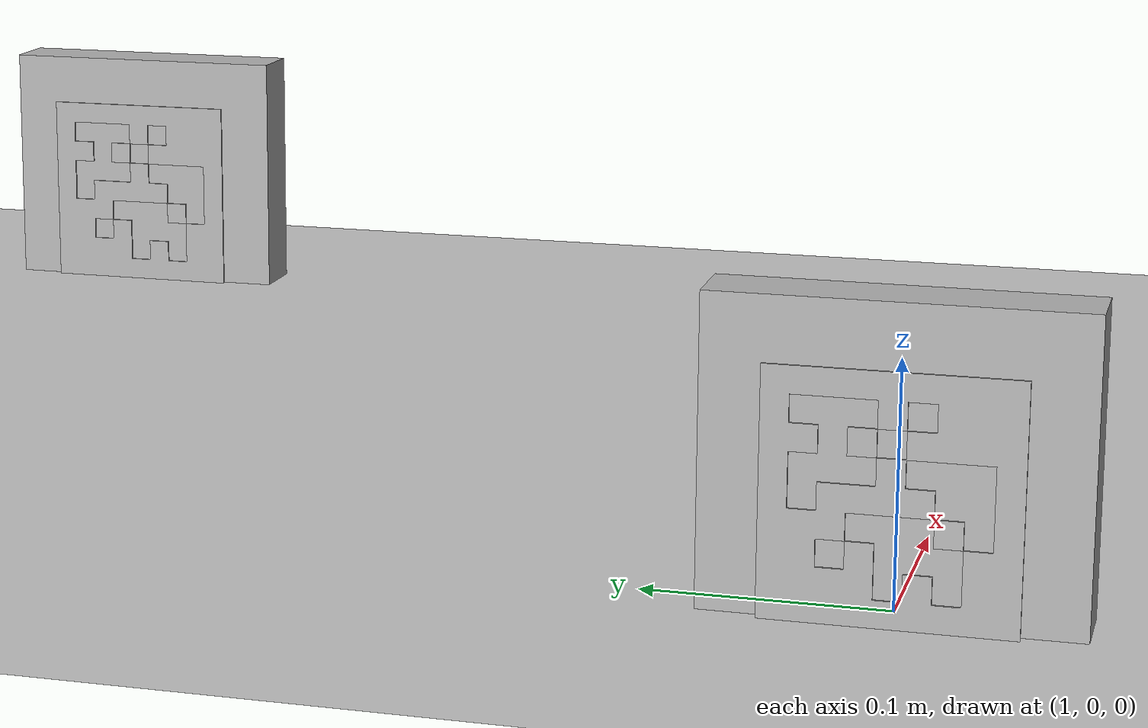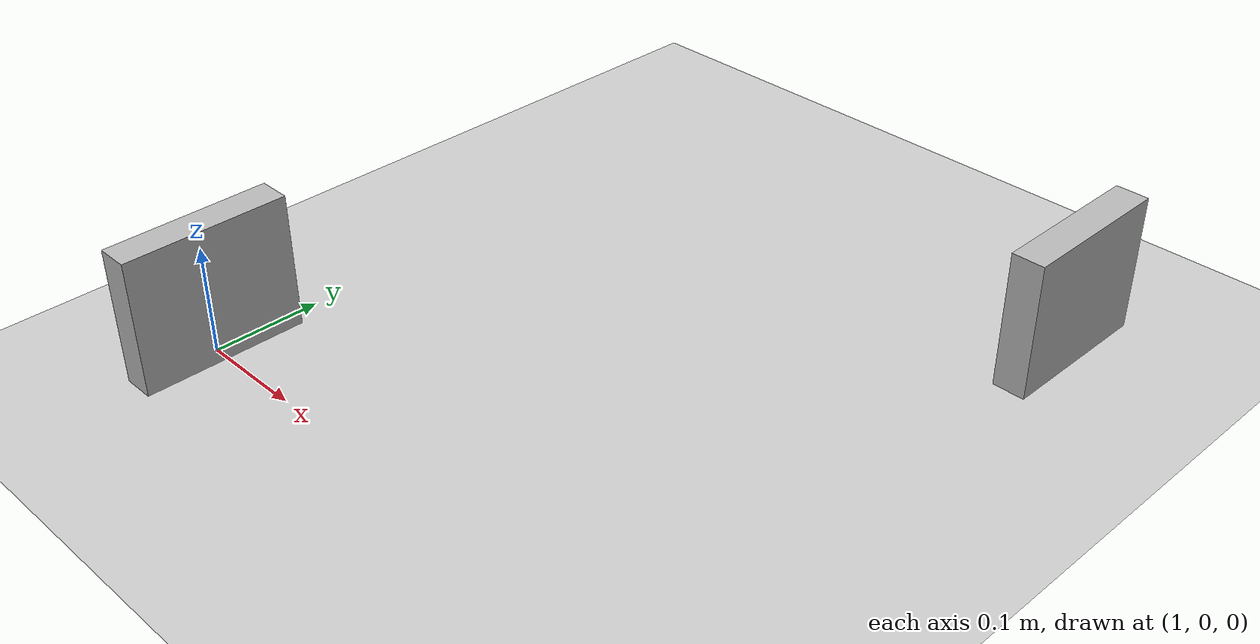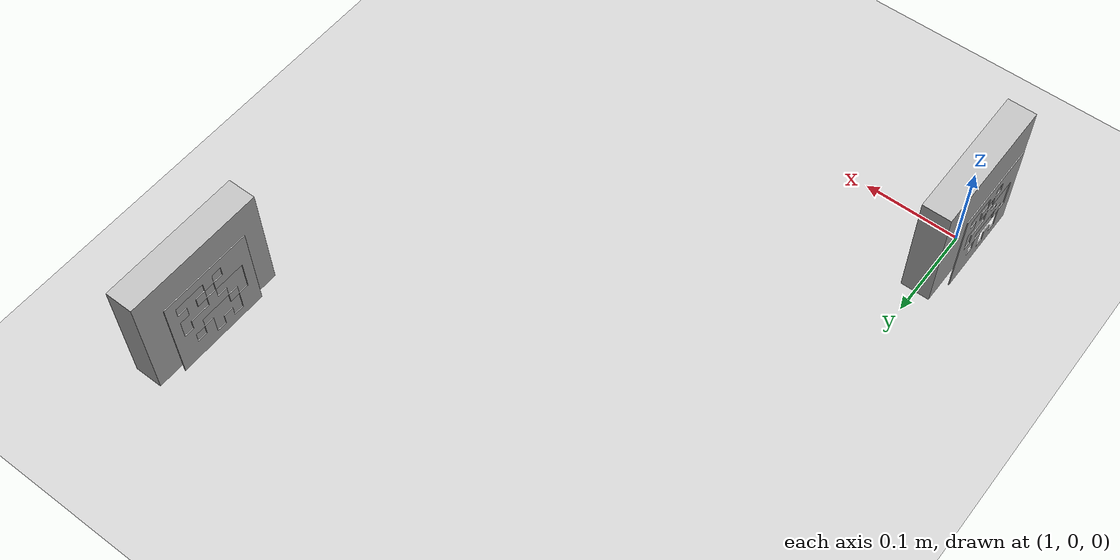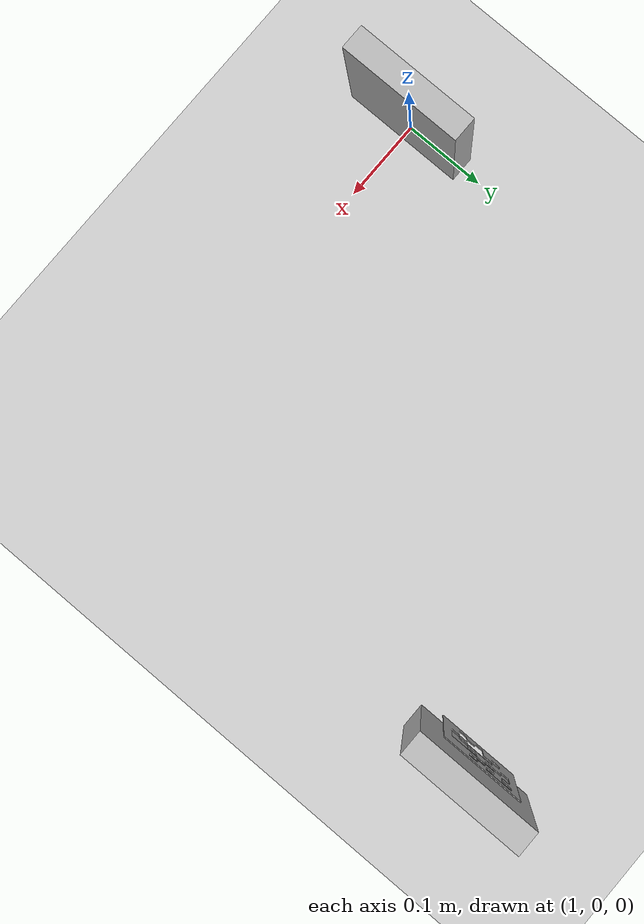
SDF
<?xml version="1.0" ?>
<sdf version="1.6">
  <world name="empty">

    <physics name="1ms" type="ignored">
      <max_step_size>0.001</max_step_size>
      <real_time_factor>1.05</real_time_factor>
    </physics>
    <plugin
      filename="gz-sim-physics-system"
      name="gz::sim::systems::Physics">
    </plugin>
    <plugin
      filename="gz-sim-user-commands-system"
      name="gz::sim::systems::UserCommands">
    </plugin>
    <plugin
      filename="gz-sim-scene-broadcaster-system"
      name="gz::sim::systems::SceneBroadcaster">
    </plugin>
    <plugin
      filename="gz-sim-contact-system"
      name="gz::sim::systems::Contact">
    </plugin>
    <plugin
        filename="gz-sim-sensors-system"
        name="gz::sim::systems::Sensors">
        <render_engine>ogre2</render_engine>
      </plugin>

    <light type="directional" name="sun">
      <cast_shadows>true</cast_shadows>
      <pose>0 0 10 0 0 0</pose>
      <diffuse>0.8 0.8 0.8 1</diffuse>
      <specular>0.2 0.2 0.2 1</specular>
      <attenuation>
        <range>1000</range>
        <constant>0.9</constant>
        <linear>0.01</linear>
        <quadratic>0.001</quadratic>
      </attenuation>
      <direction>-0.5 0.1 -0.9</direction>
    </light>

    <model name="ground_plane">
      <static>true</static>
      <link name="link">
        <collision name="collision">
          <geometry>
            <plane>
              <normal>0 0 1</normal>
              <size>100 100</size>
            </plane>
          </geometry>
        </collision>
        <visual name="visual">
          <geometry>
            <plane>
              <normal>0 0 1</normal>
              <size>100 100</size>
            </plane>
          </geometry>
          <material>
            <ambient>0.8 0.8 0.8 1</ambient>
            <diffuse>0.8 0.8 0.8 1</diffuse>
            <specular>0.8 0.8 0.8 1</specular>
          </material>
        </visual>
      </link>
    </model>

    <include>
      <name>Aruco_box1</name>
      <uri>../sdf/aruco_total.sdf</uri>
      <pose>1 0 -0.2 0 0 0</pose>
    </include>

    <include>
      <name>Aruco_box2</name>
      <uri>../sdf/aruco_total.sdf</uri>
      <pose>1.5 0.5 -0.2 0 0 0</pose>
    </include>

  </world>
</sdf>

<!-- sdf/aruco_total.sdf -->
<sdf version="1.4">
  <model name="build">
    <include>
      <uri>../sdf/aruco.sdf</uri>
    </include>

    <include>
      <uri>../sdf/aruco_base.sdf</uri>
    </include>

    <joint name="joint_00" type="fixed">
      <parent>box1::link</parent>
      <child>aruco1::aruco1</child>
      <pose>0 0 0 0.0 0.0 0.0</pose>
    </joint>
  </model>
</sdf>

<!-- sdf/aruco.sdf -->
<sdf version="1.4">
  <model name="aruco1">
      <pose>-0.022 -0.05 0.3 0 1.57 0</pose>
      <static>true</static>
      <link name="aruco1">
        <visual name="aruco1_vis">
          <geometry>
            <mesh>
              <uri>/home/anyone/autonomous_f1tenth/src/f1tenth/f1tenth_description/meshes/aruco.stl</uri>
              <scale>0.001 0.001 0.001</scale>
            </mesh>
          </geometry>
        </visual>
      </link>
    </model>
</sdf>

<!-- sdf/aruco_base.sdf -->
<sdf version="1.4">
  <model name="box1">
      <pose>0 0 0.25 0 0 0</pose>
      <static>true</static>
      <link name="link">
        <inertial>
          <mass>0.001</mass>
          <inertia> <!-- inertias are tricky to compute -->
            <!-- http://gazebosim.org/tutorials?tut=inertia&cat=build_robot -->
            <ixx>0.083</ixx>       <!-- for a box: ixx = 0.083 * mass * (y*y + z*z) -->
            <ixy>0.0</ixy>         <!-- for a box: ixy = 0 -->
            <ixz>0.0</ixz>         <!-- for a box: ixz = 0 -->
            <iyy>0.083</iyy>       <!-- for a box: iyy = 0.083 * mass * (x*x + z*z) -->
            <iyz>0.0</iyz>         <!-- for a box: iyz = 0 -->
            <izz>0.083</izz>       <!-- for a box: izz = 0.083 * mass * (x*x + y*y) -->
          </inertia>
        </inertial>
        <collision name="collision">
          <geometry>
            <box>
              <size>0.03 0.15 0.15</size>
            </box>
          </geometry>
        </collision>
        <visual name="visual">
          <geometry>
            <box>
              <size>0.03 0.15 0.15</size>
            </box>
          </geometry>
        </visual>
    </link>
  </model>
</sdf>
